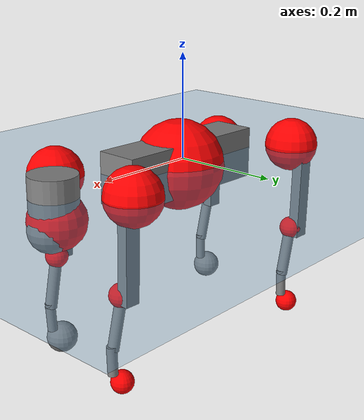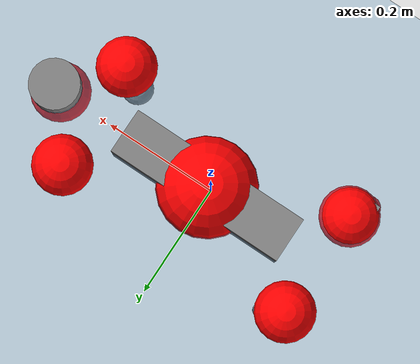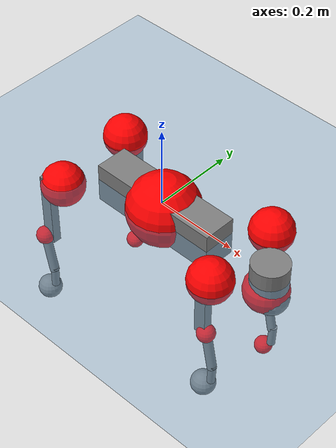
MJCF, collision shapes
<mujoco model="go2">
  <compiler angle="radian" assetdir="assets" balanceinertia="true" inertiafromgeom="false"/>

  <option timestep="0.005" density="1.2" viscosity="2e-05"/>

  <size nkey="1"/>

  <visual>
    <quality shadowsize="8192"/>
    <map shadowclip="0.5"/>
  </visual>

  <default>
    <default class="/">
      <geom contype="0" conaffinity="0" group="1" solref="-1000 -80"/>
      <site size="0.01 0.005 0.005" group="5"/>
      <general forcelimited="true" biastype="affine" gainprm="20" biasprm="0 -20 -0.5"/>
      <default class="go2">
        <joint armature="0.01" damping="0.01" frictionloss="0.2"/>
        <geom condim="1" margin="0.001"/>
        <default class="visual">
          <geom type="mesh" group="2"/>
        </default>
        <default class="collision">
          <geom group="3"/>
          <default class="foot">
            <geom size="0.022 0 0" condim="6" priority="1" friction="0.8 0.02 0.01" solimp="0.015 1 0.022"/>
          </default>
        </default>
        <default class="reward_collision_sphere">
          <geom group="5" rgba="1 0 0 1"/>
        </default>
      </default>
    </default>
  </default>

  <asset>
    <texture type="skybox" colorspace="auto" name="//unnamed_texture_0" builtin="gradient" rgb1="0.95 0.95 0.95" rgb2="0.95 0.95 0.95" width="100" height="600"/>
    <texture type="2d" colorspace="auto" name="texplane" builtin="checker" rgb1="0.345 0.575 0.748" rgb2="0.345 0.575 0.748" markrgb="1 1 1" width="512" height="512"/>
    <material name="MatPlane" class="/" texture="texplane" texuniform="true" texrepeat="2 2" specular="0.9"/>
    <material name="metal" class="/" rgba="0.9 0.95 0.95 1"/>
    <material name="black" class="/" rgba="0 0 0 1"/>
    <material name="white" class="/"/>
    <material name="gray" class="/" rgba="0.671705 0.692426 0.77427 1"/>
    <mesh name="base_0" class="/" file="base_0.obj"/>
    <mesh name="base_1" class="/" file="base_1.obj"/>
    <mesh name="base_2" class="/" file="base_2.obj"/>
    <mesh name="base_3" class="/" file="base_3.obj"/>
    <mesh name="base_4" class="/" file="base_4.obj"/>
    <mesh name="hip_0" class="/" file="hip_0.obj"/>
    <mesh name="hip_1" class="/" file="hip_1.obj"/>
    <mesh name="thigh_0" class="/" file="thigh_0.obj"/>
    <mesh name="thigh_1" class="/" file="thigh_1.obj"/>
    <mesh name="thigh_mirror_0" class="/" file="thigh_mirror_0.obj"/>
    <mesh name="thigh_mirror_1" class="/" file="thigh_mirror_1.obj"/>
    <mesh name="calf_0" class="/" file="calf_0.obj"/>
    <mesh name="calf_1" class="/" file="calf_1.obj"/>
    <mesh name="calf_mirror_0" class="/" file="calf_mirror_0.obj"/>
    <mesh name="calf_mirror_1" class="/" file="calf_mirror_1.obj"/>
    <mesh name="foot" class="/" file="foot.obj"/>
  </asset>

  <worldbody>
    <geom name="floor" class="/" size="100 100 0.125" type="plane" group="0" material="MatPlane"/>
    <light name="toplight_shadow" class="/" pos="0 0 5" dir="0.0990148 0.0990148 -0.990148" type="directional" ambient="0.04 0.04 0.04" diffuse="0.55 0.55 0.55" specular="0.12 0.12 0.12"/>
    <light name="toplight_fill" class="/" pos="0 0 5" dir="0.0990148 0.0990148 -0.990148" type="directional" castshadow="false" ambient="0.04 0.04 0.04" diffuse="0.3 0.3 0.3" specular="0.08 0.08 0.08"/>
    <body name="trunk" childclass="go2" pos="0.00830014 -0.00205752 -0.0096155" quat="0.999985 -0.00379385 -0.0028814 -0.00263769">
      <inertial pos="0.0419027 0.0163692 0.00645591" quat="0.00695226 0.687153 -0.0111312 0.726394" mass="3.2715" diaginertia="0.130843 0.0226448 0.00643513"/>
      <joint name="//unnamed_joint_0" type="free" armature="0" damping="0" frictionloss="0"/>
      <geom name="//unnamed_geom_1" class="visual" material="black" mesh="base_0"/>
      <geom name="//unnamed_geom_2" class="visual" material="black" mesh="base_1"/>
      <geom name="//unnamed_geom_3" class="visual" material="black" mesh="base_2"/>
      <geom name="//unnamed_geom_4" class="visual" material="white" mesh="base_3"/>
      <geom name="//unnamed_geom_5" class="visual" material="gray" mesh="base_4"/>
      <geom name="trunk_1" class="collision" size="0.16307 0.0405292 0.0494153" type="box"/>
      <geom name="trunk_2" class="collision" size="0.0433467 0.0390121" pos="0.302403 0 0.00790508" type="cylinder"/>
      <geom name="trunk_3" class="collision" size="0.0407459" pos="0.310891 0 -0.0474305"/>
      <geom name="//unnamed_geom_9" class="reward_collision_sphere" size="0.0866935"/>
      <geom name="//unnamed_geom_10" class="reward_collision_sphere" size="0.0520161" pos="0.297098 0 -0.0355728"/>
      <site name="imu" pos="-0.114851 0.00534746 0.120893" size="0.00866935"/>
      <camera name="track" pos="0 -1.49847 0" quat="0.707107 0.707107 0 0" mode="trackcom"/>
      <camera name="ego_camera" pos="0.331052 0 0.0355728" quat="-0.5 -0.5 0.5 0.5"/>
      <body name="FL_hip" pos="0.220094 0.0502503 0.0113613" quat="0.999995 0.00049458 -0.000440409 -0.00303271">
        <inertial pos="-0.00438247 0.0162081 0.0051523" quat="0.494628 0.494021 0.509079 0.50212" mass="0.469059" diaginertia="0.00141817 0.000208869 0.000180049"/>
        <joint name="FL_hip_joint" pos="0 0 0" axis="0.999789 0.0205069 -0.000774024" stiffness="0.0675038" range="-1.01972 0.836092" armature="0.0067932" damping="0" frictionloss="0.290952"/>
        <geom name="//unnamed_geom_11" class="visual" material="metal" mesh="hip_0"/>
        <geom name="//unnamed_geom_12" class="visual" material="gray" mesh="hip_1"/>
        <geom name="//unnamed_geom_13" class="collision" size="0.039879 0.0173387" pos="0 0.0599387 0" quat="0.707107 0.707107 0 0" type="cylinder"/>
        <geom name="//unnamed_geom_14" class="reward_collision_sphere" size="0.0520161" pos="0 0.0524463 0"/>
        <body name="FL_thigh" pos="0.0122747 0.0532213 -0.0112391" quat="0.999964 -0.0016271 -0.00512187 -0.00653952">
          <inertial pos="-0.0080656 -0.0156551 -0.0379063" quat="0.830448 0.0416208 -0.0813555 0.54955" mass="0.94045" diaginertia="0.0087007 0.00181666 0.000256882"/>
          <joint name="FL_thigh_joint" pos="0 0 0" axis="-0.0354738 0.999207 -0.0180741" stiffness="0.0209664" range="-1.90075 3.22171" armature="0.0120101" damping="0" frictionloss="0.280274"/>
          <geom name="//unnamed_geom_15" class="visual" material="metal" mesh="thigh_0"/>
          <geom name="//unnamed_geom_16" class="visual" material="gray" mesh="thigh_1"/>
          <geom name="//unnamed_geom_17" class="collision" size="0.0923285 0.0106199 0.0147379" pos="0 0 -0.0841891" quat="0.707107 0 0.707107 0" type="box"/>
          <body name="FL_calf" pos="0.00218153 -0.0168575 -0.164768" quat="0.999992 0.00213562 -0.00166427 -0.00286588">
            <inertial pos="0.00959321 -0.00792113 -0.100535" quat="0.717232 0.00986103 0.00758936 0.696723" mass="0.165193" diaginertia="0.00260887 0.000349709 1.61578e-05"/>
            <joint name="FL_calf_joint" pos="0 0 0" axis="0.0252755 0.999619 0.0110651" stiffness="0.0806739" range="-2.9904 -0.902639" armature="0.00502426" damping="0" frictionloss="0.14488"/>
            <geom name="//unnamed_geom_18" class="visual" material="gray" mesh="calf_0"/>
            <geom name="//unnamed_geom_19" class="visual" material="black" mesh="calf_1"/>
            <geom name="FL_calf0" class="collision" size="0.0104032 0.0520161" pos="0.0084885 0 -0.0474305" quat="0.994493 0 -0.104807 0" type="cylinder"/>
            <geom name="//unnamed_geom_21" class="collision" size="0.00953628 0.0281754" pos="0.0212213 0 -0.116995" quat="0.999688 0 0.0249974 0" type="cylinder"/>
            <geom name="//unnamed_geom_22" class="visual" pos="0 0 -0.168378" quat="1 0 0 0" material="black" mesh="foot"/>
            <geom name="FL_foot" class="foot" size="0.0170991" pos="-0.00212213 0 -0.168378"/>
            <geom name="//unnamed_geom_24" class="reward_collision_sphere" size="0.0216734"/>
            <geom name="//unnamed_geom_25" class="reward_collision_sphere" size="0.0216734" pos="-0.00212213 0 -0.168378"/>
            <site name="FL_foot" class="foot" pos="-0.00212213 0 -0.168378" size="0.00866935"/>
          </body>
        </body>
      </body>
      <body name="FR_hip" pos="0.2231 -0.0406877 0.00761504" quat="1 -0.000172587 -0.000680486 -0.000266523">
        <inertial pos="0.00737108 0.0182983 0.0133159" quat="0.576316 0.485477 0.468335 0.461339" mass="0.429966" diaginertia="0.00129529 0.000100779 0.00016042"/>
        <joint name="FR_hip_joint" pos="0 0 0" axis="0.997069 0.0749642 -0.0153187" range="-1.18263 1.08492" armature="0.00650653" damping="0.0737685" frictionloss="0.0875351"/>
        <geom name="//unnamed_geom_26" class="visual" pos="0 -3.59564e-10 -1.54224e-08" quat="4.63268e-05 1 0 0" material="metal" mesh="hip_0"/>
        <geom name="//unnamed_geom_27" class="visual" pos="0 -5.82896e-10 3.81456e-08" quat="4.63268e-05 1 0 0" material="gray" mesh="hip_1"/>
        <geom name="//unnamed_geom_28" class="collision" size="0.039879 0.0173387" pos="0 -0.0599387 0" quat="0.707107 0.707107 0 0" type="cylinder"/>
        <geom name="//unnamed_geom_29" class="reward_collision_sphere" size="0.0520161" pos="0 -0.0524463 0"/>
        <body name="FR_thigh" pos="-0.0119241 -0.0596929 0.0158577" quat="0.999969 0.00726019 0.00314731 -0.000545362">
          <inertial pos="-0.0215978 0.0256809 -0.0135224" quat="0.561475 -0.0171175 0.022644 0.827007" mass="0.663618" diaginertia="0.0101513 0.00179988 0.000230596"/>
          <joint name="FR_thigh_joint" pos="0 0 0" axis="0.0163727 -0.999863 0.00223147" range="-3.68283 1.717" armature="0.0137687" damping="0.0105353" frictionloss="0.0820323"/>
          <geom name="//unnamed_geom_30" class="visual" material="metal" mesh="thigh_mirror_0"/>
          <geom name="//unnamed_geom_31" class="visual" material="gray" mesh="thigh_mirror_1"/>
          <geom name="//unnamed_geom_32" class="collision" size="0.0923285 0.0106199 0.0147379" pos="0 0 -0.0841891" quat="0.707107 0 0.707107 0" type="box"/>
          <body name="FR_calf" pos="0.0126094 -0.00237022 -0.174448" quat="0.999981 -0.00445853 0.00112269 0.00412926">
            <inertial pos="0.0215701 0.000133 -0.112755" quat="0.73564 0.0710188 0.0220119 0.67328" mass="0.107598" diaginertia="0.00141392 0.000318976 1.28913e-05"/>
            <joint name="FR_calf_joint" pos="0 0 0" axis="-0.00070739 -1 0.000196477" stiffness="0.0870145" range="1.19467 2.97695" armature="0.00127607" damping="0" frictionloss="0.0785335"/>
            <geom name="//unnamed_geom_33" class="visual" material="gray" mesh="calf_mirror_0"/>
            <geom name="//unnamed_geom_34" class="visual" material="black" mesh="calf_mirror_1"/>
            <geom name="FR_calf0" class="collision" size="0.0112702 0.0520161" pos="0.0106106 0 -0.0474305" quat="0.995004 0 -0.0998334 0" type="cylinder"/>
            <geom name="//unnamed_geom_36" class="collision" size="0.00953628 0.0281754" pos="0.0212213 0 -0.116995" quat="0.999688 0 0.0249974 0" type="cylinder"/>
            <geom name="//unnamed_geom_37" class="visual" pos="0 0 -0.168378" quat="1 0 0 0" material="black" mesh="foot"/>
            <geom name="FR_foot" class="foot" size="0.0296908" pos="-0.00212213 0 -0.168378"/>
            <geom name="//unnamed_geom_39" class="reward_collision_sphere" size="0.0216734"/>
            <geom name="//unnamed_geom_40" class="reward_collision_sphere" size="0.0216734" pos="-0.00212213 0 -0.168378"/>
            <site name="FR_foot" class="foot" pos="-0.00212213 0 -0.168378" size="0.00866935"/>
          </body>
        </body>
      </body>
      <body name="RL_hip" pos="-0.22186 0.0487586 0.0161528" quat="0.999998 -0.00149694 0.00132585 -0.000590832">
        <inertial pos="0.00696228 -0.0123492 0.0181952" quat="0.471679 0.498261 0.557587 0.467282" mass="0.34228" diaginertia="0.000694313 0.000119689 0.000132185"/>
        <joint name="RL_hip_joint" pos="0 0 0" axis="-0.997075 0.0375245 -0.0665898" stiffness="0.0528135" range="-0.985987 0.854118" armature="0.0103213" damping="0.0928218" frictionloss="0.172634"/>
        <geom name="//unnamed_geom_41" class="visual" pos="-2.35697e-09 0 -4.6202e-07" quat="4.63268e-05 0 1 0" material="metal" mesh="hip_0"/>
        <geom name="//unnamed_geom_42" class="visual" pos="-3.82092e-09 0 -4.09746e-07" quat="4.63268e-05 0 1 0" material="gray" mesh="hip_1"/>
        <geom name="//unnamed_geom_43" class="collision" size="0.039879 0.0173387" pos="0 0.0599387 0" quat="0.707107 0.707107 0 0" type="cylinder"/>
        <geom name="//unnamed_geom_44" class="reward_collision_sphere" size="0.0520161" pos="0 0.0524463 0"/>
        <body name="RL_thigh" pos="0.00233926 0.0821168 -0.0108844" quat="0.999988 -0.00345637 0.000736774 -0.00350066">
          <inertial pos="0.0155118 -0.0261886 -0.00755615" quat="0.824923 0.0822934 -0.00784159 0.559168" mass="0.996462" diaginertia="0.01163 0.00133755 0.000279242"/>
          <joint name="RL_thigh_joint" pos="0 0 0" axis="0.0080723 0.999946 -0.00651463" range="-0.290811 4.80685" armature="0.00556956" damping="0.0807072" frictionloss="0.188505"/>
          <geom name="//unnamed_geom_45" class="visual" material="metal" mesh="thigh_0"/>
          <geom name="//unnamed_geom_46" class="visual" material="gray" mesh="thigh_1"/>
          <geom name="//unnamed_geom_47" class="collision" size="0.0923285 0.0106199 0.0147379" pos="0 0 -0.0841891" quat="0.707107 0 0.707107 0" type="box"/>
          <body name="RL_calf" pos="0.0102381 -0.0100094 -0.159216" quat="1 0.000302195 -5.65135e-05 0.000328576">
            <inertial pos="-0.00499088 -0.0170764 -0.102502" quat="0.716801 0.0410886 -0.055159 0.693878" mass="0.121007" diaginertia="0.00177006 0.000207485 1.09791e-05"/>
            <joint name="RL_calf_joint" pos="0 0 0" axis="0.0128214 0.999686 0.0215111" range="-3.04739 -0.560617" armature="0.00090034" damping="0" frictionloss="0.309591"/>
            <geom name="//unnamed_geom_48" class="visual" material="gray" mesh="calf_0"/>
            <geom name="//unnamed_geom_49" class="visual" material="black" mesh="calf_1"/>
            <geom name="RL_calf0" class="collision" size="0.0112702 0.0520161" pos="0.0106106 0 -0.0474305" quat="0.995004 0 -0.0998334 0" type="cylinder"/>
            <geom name="//unnamed_geom_51" class="collision" size="0.00953628 0.0281754" pos="0.0212213 0 -0.116995" quat="0.999688 0 0.0249974 0" type="cylinder"/>
            <geom name="//unnamed_geom_52" class="visual" pos="0 0 -0.168378" quat="1 0 0 0" material="black" mesh="foot"/>
            <geom name="RL_foot" class="foot" size="0.0118007" pos="-0.00212213 0 -0.168378"/>
            <geom name="//unnamed_geom_54" class="reward_collision_sphere" size="0.0216734"/>
            <geom name="//unnamed_geom_55" class="reward_collision_sphere" size="0.0216734" pos="-0.00212213 0 -0.168378"/>
            <site name="RL_foot" class="foot" pos="-0.00212213 0 -0.168378" size="0.00866935"/>
          </body>
        </body>
      </body>
      <body name="RR_hip" pos="-0.224731 -0.0394515 -0.0104724" quat="0.999997 -0.00146111 -0.00138304 0.00132941">
        <inertial pos="0.018386 -0.0134644 0.0180673" quat="0.465436 0.558441 0.433549 0.532492" mass="0.439894" diaginertia="0.00143806 0.000167277 0.000187555"/>
        <joint name="RR_hip_joint" pos="0 0 0" axis="-0.996261 -0.0322513 -0.0801546" range="-0.711036 0.809138" armature="0.0135528" damping="0.0689503" frictionloss="0.172626"/>
        <geom name="//unnamed_geom_56" class="visual" pos="2.34617e-09 -3.59564e-10 -4.46597e-07" quat="2.14617e-09 4.63268e-05 4.63268e-05 -1" material="metal" mesh="hip_0"/>
        <geom name="//unnamed_geom_57" class="visual" pos="3.84763e-09 -5.82896e-10 -4.47891e-07" quat="2.14617e-09 4.63268e-05 4.63268e-05 -1" material="gray" mesh="hip_1"/>
        <geom name="//unnamed_geom_58" class="collision" size="0.039879 0.0173387" pos="0 -0.0599387 0" quat="0.707107 0.707107 0 0" type="cylinder"/>
        <geom name="//unnamed_geom_59" class="reward_collision_sphere" size="0.0520161" pos="0 -0.0524463 0"/>
        <body name="RR_thigh" pos="-0.0183832 -0.0811724 0.0167422" quat="0.999968 0.0020245 -0.00437679 -0.00630467">
          <inertial pos="-0.00797907 0.00414263 -0.0338266" quat="0.552812 -0.0221531 0.0751007 0.829619" mass="1.03323" diaginertia="0.0110267 0.00170995 0.000339935"/>
          <joint name="RR_thigh_joint" pos="0 0 0" axis="0.0212631 -0.999394 0.02757" stiffness="0.0276359" range="-4.79112 0.704689" armature="0.0117374" damping="0" frictionloss="0.195103"/>
          <geom name="//unnamed_geom_60" class="visual" material="metal" mesh="thigh_mirror_0"/>
          <geom name="//unnamed_geom_61" class="visual" material="gray" mesh="thigh_mirror_1"/>
          <geom name="//unnamed_geom_62" class="collision" size="0.0923285 0.0106199 0.0147379" pos="0 0 -0.0841891" quat="0.707107 0 0.707107 0" type="box"/>
          <body name="RR_calf" pos="-0.00789843 -0.0153429 -0.161706" quat="0.999961 -0.00224163 -0.00829085 -0.00181132">
            <inertial pos="-0.00880716 0.0113389 -0.120379" quat="0.672758 0.0526029 -0.0227689 0.737639" mass="0.147309" diaginertia="0.00239549 0.000337729 1.82715e-05"/>
            <joint name="RR_calf_joint" pos="0 0 0" axis="0.0258904 -0.999593 0.0119986" range="0.82209 2.38187" armature="0.00856093" damping="0" frictionloss="0.0792384"/>
            <geom name="//unnamed_geom_63" class="visual" material="gray" mesh="calf_mirror_0"/>
            <geom name="//unnamed_geom_64" class="visual" material="black" mesh="calf_mirror_1"/>
            <geom name="RR_calf0" class="collision" size="0.0112702 0.0520161" pos="0.0106106 0 -0.0474305" quat="0.995004 0 -0.0998334 0" type="cylinder"/>
            <geom name="//unnamed_geom_66" class="collision" size="0.00953628 0.0281754" pos="0.0212213 0 -0.116995" quat="0.999688 0 0.0249974 0" type="cylinder"/>
            <geom name="//unnamed_geom_67" class="visual" pos="0 0 -0.168378" quat="1 0 0 0" material="black" mesh="foot"/>
            <geom name="RR_foot" class="foot" size="0.0288785" pos="-0.00212213 0 -0.168378"/>
            <geom name="//unnamed_geom_69" class="reward_collision_sphere" size="0.0216734"/>
            <geom name="//unnamed_geom_70" class="reward_collision_sphere" size="0.0216734" pos="-0.00212213 0 -0.168378"/>
            <site name="RR_foot" class="foot" pos="-0.00212213 0 -0.168378" size="0.00866935"/>
          </body>
        </body>
      </body>
    </body>
  </worldbody>

  <contact>
    <pair class="/" geom1="floor" geom2="FL_foot" name="//unnamed_contact_0"/>
    <pair class="/" geom1="floor" geom2="FR_foot" name="//unnamed_contact_1"/>
    <pair class="/" geom1="floor" geom2="RL_foot" name="//unnamed_contact_2"/>
    <pair class="/" geom1="floor" geom2="RR_foot" name="//unnamed_contact_3"/>
  </contact>

  <actuator>
    <general name="FL_hip" class="/" joint="FL_hip_joint" forcerange="-32.1128 32.1128" gainprm="22.7025" biasprm="0 -22.7025 -0.566321"/>
    <general name="FL_thigh" class="/" joint="FL_thigh_joint" forcerange="-34.4961 34.4961" gainprm="22.7025" biasprm="0 -22.7025 -0.566321"/>
    <general name="FL_calf" class="/" joint="FL_calf_joint" forcerange="-53.361 53.361" gainprm="22.7025" biasprm="0 -22.7025 -0.566321"/>
    <general name="FR_hip" class="/" joint="FR_hip_joint" forcerange="-17.7162 17.7162" gainprm="22.7025" biasprm="0 -22.7025 -0.566321"/>
    <general name="FR_thigh" class="/" joint="FR_thigh_joint" forcerange="-9.72365 9.72365" gainprm="22.7025" biasprm="0 -22.7025 -0.566321"/>
    <general name="FR_calf" class="/" joint="FR_calf_joint" forcerange="-50.203 50.203" gainprm="22.7025" biasprm="0 -22.7025 -0.566321"/>
    <general name="RL_hip" class="/" joint="RL_hip_joint" forcerange="-22.7993 22.7993" gainprm="22.7025" biasprm="0 -22.7025 -0.566321"/>
    <general name="RL_thigh" class="/" joint="RL_thigh_joint" forcerange="-31.6775 31.6775" gainprm="22.7025" biasprm="0 -22.7025 -0.566321"/>
    <general name="RL_calf" class="/" joint="RL_calf_joint" forcerange="-24.9775 24.9775" gainprm="22.7025" biasprm="0 -22.7025 -0.566321"/>
    <general name="RR_hip" class="/" joint="RR_hip_joint" forcerange="-25.3818 25.3818" gainprm="22.7025" biasprm="0 -22.7025 -0.566321"/>
    <general name="RR_thigh" class="/" joint="RR_thigh_joint" forcerange="-8.01784 8.01784" gainprm="22.7025" biasprm="0 -22.7025 -0.566321"/>
    <general name="RR_calf" class="/" joint="RR_calf_joint" forcerange="-28.1335 28.1335" gainprm="22.7025" biasprm="0 -22.7025 -0.566321"/>
  </actuator>

  <sensor>
    <gyro site="imu" name="imu_angular_velocity"/>
    <velocimeter site="imu" name="imu_linear_velocity"/>
    <framelinvel objtype="site" objname="FL_foot" name="FL_foot_global_linear_velocity"/>
    <framelinvel objtype="site" objname="FR_foot" name="FR_foot_global_linear_velocity"/>
    <framelinvel objtype="site" objname="RL_foot" name="RL_foot_global_linear_velocity"/>
    <framelinvel objtype="site" objname="RR_foot" name="RR_foot_global_linear_velocity"/>
  </sensor>

  <keyframe>
    <key name="home" qpos="0 0 0.325 1 0 0 0 0.1 0.8 -1.5 -0.1 -0.8 1.5 -0.1 0.8 -1.5 0.1 -0.8 1.5"/>
  </keyframe>
</mujoco>
